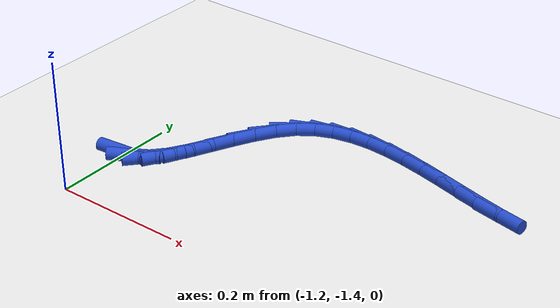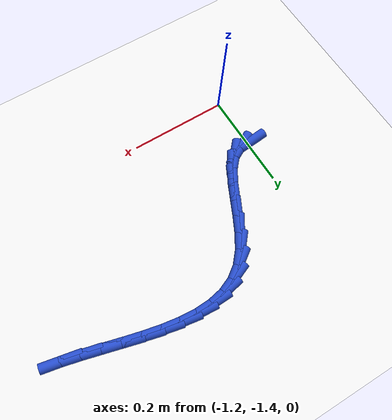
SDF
<sdf version="1.6">
 <world name="default">
  <model name="ground_plane">
   <static>1</static>
   <link name="link">
    <collision name="collision">
     <geometry><plane><normal>0 0 1</normal><size>100 100</size></plane></geometry>
     <surface><friction><ode><mu>100</mu><mu2>50</mu2></ode></friction></surface>
    </collision>
    <visual name="visual">
     <cast_shadows>0</cast_shadows>
     <geometry><plane><normal>0 0 1</normal><size>100 100</size></plane></geometry>
     <material>
      <script><uri>file://media/materials/scripts/gazebo.material</uri><name>Gazebo/WhiteGlow</name></script>
     </material>
    </visual>
   </link>
  </model>
  <model name="line">
   <link name="link_186">
    <pose>-1.1989200954386785 -1.2876793075753699 0.01 0 1.57 0.09573252870873758</pose>
    <collision name="collision">
     <geometry><cylinder><radius>0.01</radius><length>0.08</length></cylinder></geometry>
    </collision>
    <visual name="visual">
     <material>
      <script><name>Gazebo/Blue</name><uri>file://media/materials/scripts/gazebo.material</uri></script>
     </material>
     <geometry><cylinder><radius>0.01</radius><length>0.08</length></cylinder></geometry>
    </visual>
   </link>
   <link name="link_187">
    <pose>-1.176171769271677 -1.285494875472682 0.01 0 1.57 0.5086807788527917</pose>
    <collision name="collision">
     <geometry><cylinder><radius>0.01</radius><length>0.08</length></cylinder></geometry>
    </collision>
    <visual name="visual">
     <material>
      <script><name>Gazebo/Blue</name><uri>file://media/materials/scripts/gazebo.material</uri></script>
     </material>
     <geometry><cylinder><radius>0.01</radius><length>0.08</length></cylinder></geometry>
    </visual>
   </link>
   <link name="link_188">
    <pose>-1.1561686276879477 -1.2743405634409286 0.01 0 1.57 0.8423350804652193</pose>
    <collision name="collision">
     <geometry><cylinder><radius>0.01</radius><length>0.08</length></cylinder></geometry>
    </collision>
    <visual name="visual">
     <material>
      <script><name>Gazebo/Blue</name><uri>file://media/materials/scripts/gazebo.material</uri></script>
     </material>
     <geometry><cylinder><radius>0.01</radius><length>0.08</length></cylinder></geometry>
    </visual>
   </link>
   <link name="link_189">
    <pose>-1.1385287475869916 -1.2545682431680454 0.01 0 1.57 1.0195769479270915</pose>
    <collision name="collision">
     <geometry><cylinder><radius>0.01</radius><length>0.08</length></cylinder></geometry>
    </collision>
    <visual name="visual">
     <material>
      <script><name>Gazebo/Blue</name><uri>file://media/materials/scripts/gazebo.material</uri></script>
     </material>
     <geometry><cylinder><radius>0.01</radius><length>0.08</length></cylinder></geometry>
    </visual>
   </link>
   <link name="link_190">
    <pose>-1.1224342158524525 -1.2283890871895708 0.01 0 1.57 1.1008975103544898</pose>
    <collision name="collision">
     <geometry><cylinder><radius>0.01</radius><length>0.08</length></cylinder></geometry>
    </collision>
    <visual name="visual">
     <material>
      <script><name>Gazebo/Blue</name><uri>file://media/materials/scripts/gazebo.material</uri></script>
     </material>
     <geometry><cylinder><radius>0.01</radius><length>0.08</length></cylinder></geometry>
    </visual>
   </link>
   <link name="link_191">
    <pose>-1.107048668644457 -1.1980929520581693 0.01 0 1.57 1.1209067810445066</pose>
    <collision name="collision">
     <geometry><cylinder><radius>0.01</radius><length>0.08</length></cylinder></geometry>
    </collision>
    <visual name="visual">
     <material>
      <script><name>Gazebo/Blue</name><uri>file://media/materials/scripts/gazebo.material</uri></script>
     </material>
     <geometry><cylinder><radius>0.01</radius><length>0.08</length></cylinder></geometry>
    </visual>
   </link>
   <link name="link_192">
    <pose>-1.091535742123131 -1.1659696943265068 0.01 0 1.57 1.0909489752358439</pose>
    <collision name="collision">
     <geometry><cylinder><radius>0.01</radius><length>0.08</length></cylinder></geometry>
    </collision>
    <visual name="visual">
     <material>
      <script><name>Gazebo/Blue</name><uri>file://media/materials/scripts/gazebo.material</uri></script>
     </material>
     <geometry><cylinder><radius>0.01</radius><length>0.08</length></cylinder></geometry>
    </visual>
   </link>
   <link name="link_193">
    <pose>-1.0750590724486013 -1.1343091705472486 0.01 0 1.57 1.0070070356551444</pose>
    <collision name="collision">
     <geometry><cylinder><radius>0.01</radius><length>0.08</length></cylinder></geometry>
    </collision>
    <visual name="visual">
     <material>
      <script><name>Gazebo/Blue</name><uri>file://media/materials/scripts/gazebo.material</uri></script>
     </material>
     <geometry><cylinder><radius>0.01</radius><length>0.08</length></cylinder></geometry>
    </visual>
   </link>
   <link name="link_194">
    <pose>-1.0567822957809945 -1.1054012372730606 0.01 0 1.57 0.8512796682718498</pose>
    <collision name="collision">
     <geometry><cylinder><radius>0.01</radius><length>0.08</length></cylinder></geometry>
    </collision>
    <visual name="visual">
     <material>
      <script><name>Gazebo/Blue</name><uri>file://media/materials/scripts/gazebo.material</uri></script>
     </material>
     <geometry><cylinder><radius>0.01</radius><length>0.08</length></cylinder></geometry>
    </visual>
   </link>
   <link name="link_195">
    <pose>-1.0358696738387967 -1.0815341874933946 0.01 0 1.57 0.6230318181331882</pose>
    <collision name="collision">
     <geometry><cylinder><radius>0.01</radius><length>0.08</length></cylinder></geometry>
    </collision>
    <visual name="visual">
     <material>
      <script><name>Gazebo/Blue</name><uri>file://media/materials/scripts/gazebo.material</uri></script>
     </material>
     <geometry><cylinder><radius>0.01</radius><length>0.08</length></cylinder></geometry>
    </visual>
   </link>
   <link name="link_196">
    <pose>-1.0117906552006932 -1.0642335093532869 0.01 0 1.57 0.3934024491137957</pose>
    <collision name="collision">
     <geometry><cylinder><radius>0.01</radius><length>0.08</length></cylinder></geometry>
    </collision>
    <visual name="visual">
     <material>
      <script><name>Gazebo/Blue</name><uri>file://media/materials/scripts/gazebo.material</uri></script>
     </material>
     <geometry><cylinder><radius>0.01</radius><length>0.08</length></cylinder></geometry>
    </visual>
   </link>
   <link name="link_197">
    <pose>-0.9848104525019319 -1.0530357040637897 0.01 0 1.57 0.1967729215422756</pose>
    <collision name="collision">
     <geometry><cylinder><radius>0.01</radius><length>0.08</length></cylinder></geometry>
    </collision>
    <visual name="visual">
     <material>
      <script><name>Gazebo/Blue</name><uri>file://media/materials/scripts/gazebo.material</uri></script>
     </material>
     <geometry><cylinder><radius>0.01</radius><length>0.08</length></cylinder></geometry>
    </visual>
   </link>
   <link name="link_198">
    <pose>-0.9553223447623865 -1.0471571749833248 0.01 0 1.57 0.042466016113970356</pose>
    <collision name="collision">
     <geometry><cylinder><radius>0.01</radius><length>0.08</length></cylinder></geometry>
    </collision>
    <visual name="visual">
     <material>
      <script><name>Gazebo/Blue</name><uri>file://media/materials/scripts/gazebo.material</uri></script>
     </material>
     <geometry><cylinder><radius>0.01</radius><length>0.08</length></cylinder></geometry>
    </visual>
   </link>
   <link name="link_199">
    <pose>-0.9237196110019325 -1.0458143254703152 0.01 0 1.57 -0.07217150158965142</pose>
    <collision name="collision">
     <geometry><cylinder><radius>0.01</radius><length>0.08</length></cylinder></geometry>
    </collision>
    <visual name="visual">
     <material>
      <script><name>Gazebo/Blue</name><uri>file://media/materials/scripts/gazebo.material</uri></script>
     </material>
     <geometry><cylinder><radius>0.01</radius><length>0.08</length></cylinder></geometry>
    </visual>
   </link>
   <link name="link_200">
    <pose>-0.8903955302404432 -1.0482235588831832 0.01 0 1.57 -0.15396332314173394</pose>
    <collision name="collision">
     <geometry><cylinder><radius>0.01</radius><length>0.08</length></cylinder></geometry>
    </collision>
    <visual name="visual">
     <material>
      <script><name>Gazebo/Blue</name><uri>file://media/materials/scripts/gazebo.material</uri></script>
     </material>
     <geometry><cylinder><radius>0.01</radius><length>0.08</length></cylinder></geometry>
    </visual>
   </link>
   <link name="link_201">
    <pose>-0.8557433814977936 -1.0536012785803512 0.01 0 1.57 -0.20939574617943105</pose>
    <collision name="collision">
     <geometry><cylinder><radius>0.01</radius><length>0.08</length></cylinder></geometry>
    </collision>
    <visual name="visual">
     <material>
      <script><name>Gazebo/Blue</name><uri>file://media/materials/scripts/gazebo.material</uri></script>
     </material>
     <geometry><cylinder><radius>0.01</radius><length>0.08</length></cylinder></geometry>
    </visual>
   </link>
   <link name="link_202">
    <pose>-0.8201564437938583 -1.061163887920242 0.01 0 1.57 -0.2432009585718792</pose>
    <collision name="collision">
     <geometry><cylinder><radius>0.01</radius><length>0.08</length></cylinder></geometry>
    </collision>
    <visual name="visual">
     <material>
      <script><name>Gazebo/Blue</name><uri>file://media/materials/scripts/gazebo.material</uri></script>
     </material>
     <geometry><cylinder><radius>0.01</radius><length>0.08</length></cylinder></geometry>
    </visual>
   </link>
   <link name="link_203">
    <pose>-0.7840279961485113 -1.070127790261277 0.01 0 1.57 -0.2582285088746536</pose>
    <collision name="collision">
     <geometry><cylinder><radius>0.01</radius><length>0.08</length></cylinder></geometry>
    </collision>
    <visual name="visual">
     <material>
      <script><name>Gazebo/Blue</name><uri>file://media/materials/scripts/gazebo.material</uri></script>
     </material>
     <geometry><cylinder><radius>0.01</radius><length>0.08</length></cylinder></geometry>
    </visual>
   </link>
   <link name="link_204">
    <pose>-0.7477513175816273 -1.0797093889618796 0.01 0 1.57 -0.2556018118779158</pose>
    <collision name="collision">
     <geometry><cylinder><radius>0.01</radius><length>0.08</length></cylinder></geometry>
    </collision>
    <visual name="visual">
     <material>
      <script><name>Gazebo/Blue</name><uri>file://media/materials/scripts/gazebo.material</uri></script>
     </material>
     <geometry><cylinder><radius>0.01</radius><length>0.08</length></cylinder></geometry>
    </visual>
   </link>
   <link name="link_205">
    <pose>-0.7117196871130805 -1.0891250873804719 0.01 0 1.57 -0.23479170993035073</pose>
    <collision name="collision">
     <geometry><cylinder><radius>0.01</radius><length>0.08</length></cylinder></geometry>
    </collision>
    <visual name="visual">
     <material>
      <script><name>Gazebo/Blue</name><uri>file://media/materials/scripts/gazebo.material</uri></script>
     </material>
     <geometry><cylinder><radius>0.01</radius><length>0.08</length></cylinder></geometry>
    </visual>
   </link>
   <link name="link_206">
    <pose>-0.6763263837627453 -1.0975912888754764 0.01 0 1.57 -0.1934964458139102</pose>
    <collision name="collision">
     <geometry><cylinder><radius>0.01</radius><length>0.08</length></cylinder></geometry>
    </collision>
    <visual name="visual">
     <material>
      <script><name>Gazebo/Blue</name><uri>file://media/materials/scripts/gazebo.material</uri></script>
     </material>
     <geometry><cylinder><radius>0.01</radius><length>0.08</length></cylinder></geometry>
    </visual>
   </link>
  </model>
 </world>
</sdf>
